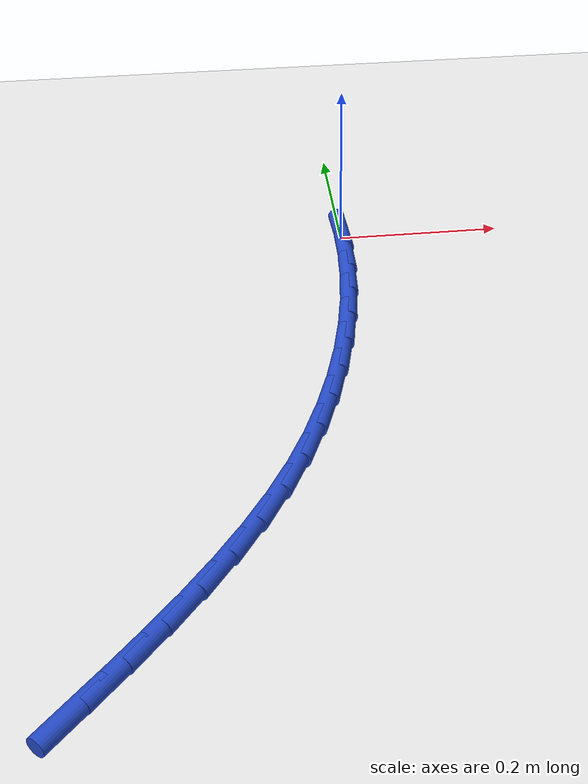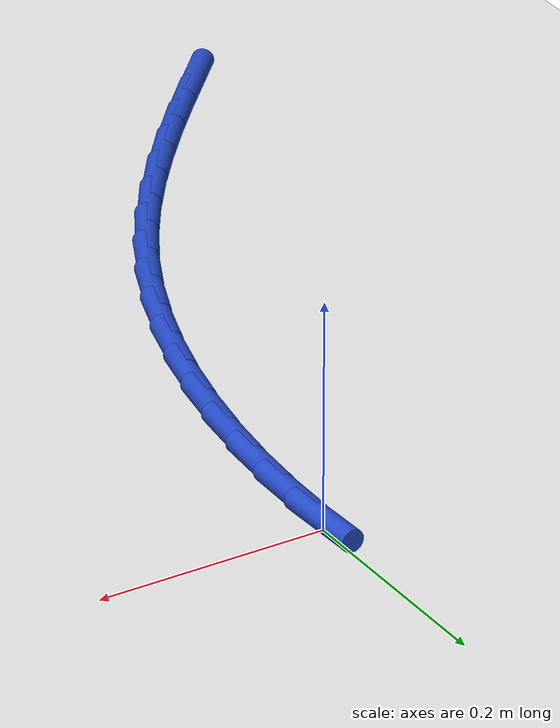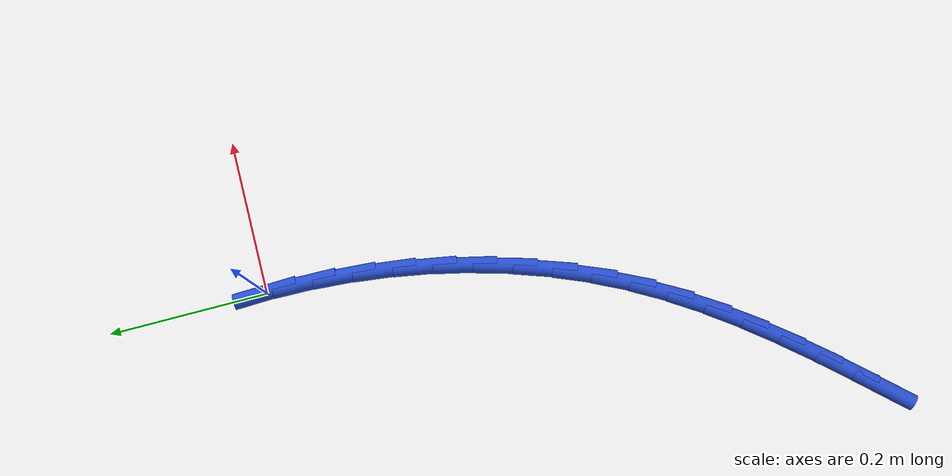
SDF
<sdf version="1.6">
 <world name="default">
  <model name="ground_plane">
   <static>1</static>
   <link name="link">
    <collision name="collision">
     <geometry><plane><normal>0 0 1</normal><size>100 100</size></plane></geometry>
     <surface><friction><ode><mu>100</mu><mu2>50</mu2></ode></friction></surface>
    </collision>
    <visual name="visual">
     <cast_shadows>0</cast_shadows>
     <geometry><plane><normal>0 0 1</normal><size>100 100</size></plane></geometry>
     <material>
      <script><uri>file://media/materials/scripts/gazebo.material</uri><name>Gazebo/WhiteGlow</name></script>
     </material>
    </visual>
   </link>
  </model>
  <model name="line">
   <link name="link_0">
    <pose>3.642919299551295e-17 9.71445146547012e-17 0.01 0 1.57 -1.5333083393462763</pose>
    <collision name="collision">
     <geometry><cylinder><radius>0.01</radius><length>0.08</length></cylinder></geometry>
    </collision>
    <visual name="visual">
     <material>
      <script><name>Gazebo/Blue</name><uri>file://media/materials/scripts/gazebo.material</uri></script>
     </material>
     <geometry><cylinder><radius>0.01</radius><length>0.08</length></cylinder></geometry>
    </visual>
   </link>
   <link name="link_124">
    <pose>-0.30599421895702766 -0.706148647266469 0.01 0 1.57 0.8298939743505049</pose>
    <collision name="collision">
     <geometry><cylinder><radius>0.01</radius><length>0.08</length></cylinder></geometry>
    </collision>
    <visual name="visual">
     <material>
      <script><name>Gazebo/Blue</name><uri>file://media/materials/scripts/gazebo.material</uri></script>
     </material>
     <geometry><cylinder><radius>0.01</radius><length>0.08</length></cylinder></geometry>
    </visual>
   </link>
   <link name="link_125">
    <pose>-0.2721430266166612 -0.6691425185604557 0.01 0 1.57 0.846698131527588</pose>
    <collision name="collision">
     <geometry><cylinder><radius>0.01</radius><length>0.08</length></cylinder></geometry>
    </collision>
    <visual name="visual">
     <material>
      <script><name>Gazebo/Blue</name><uri>file://media/materials/scripts/gazebo.material</uri></script>
     </material>
     <geometry><cylinder><radius>0.01</radius><length>0.08</length></cylinder></geometry>
    </visual>
   </link>
   <link name="link_126">
    <pose>-0.23922746787115376 -0.6319222420731724 0.01 0 1.57 0.8717692440145409</pose>
    <collision name="collision">
     <geometry><cylinder><radius>0.01</radius><length>0.08</length></cylinder></geometry>
    </collision>
    <visual name="visual">
     <material>
      <script><name>Gazebo/Blue</name><uri>file://media/materials/scripts/gazebo.material</uri></script>
     </material>
     <geometry><cylinder><radius>0.01</radius><length>0.08</length></cylinder></geometry>
    </visual>
   </link>
   <link name="link_127">
    <pose>-0.20753252862469113 -0.5942182963813545 0.01 0 1.57 0.9052611310556437</pose>
    <collision name="collision">
     <geometry><cylinder><radius>0.01</radius><length>0.08</length></cylinder></geometry>
    </collision>
    <visual name="visual">
     <material>
      <script><name>Gazebo/Blue</name><uri>file://media/materials/scripts/gazebo.material</uri></script>
     </material>
     <geometry><cylinder><radius>0.01</radius><length>0.08</length></cylinder></geometry>
    </visual>
   </link>
   <link name="link_128">
    <pose>-0.17734319478145744 -0.555761160061735 0.01 0 1.57 0.9472196221209314</pose>
    <collision name="collision">
     <geometry><cylinder><radius>0.01</radius><length>0.08</length></cylinder></geometry>
    </collision>
    <visual name="visual">
     <material>
      <script><name>Gazebo/Blue</name><uri>file://media/materials/scripts/gazebo.material</uri></script>
     </material>
     <geometry><cylinder><radius>0.01</radius><length>0.08</length></cylinder></geometry>
    </visual>
   </link>
   <link name="link_129">
    <pose>-0.14894445224563752 -0.5162813116910486 0.01 0 1.57 0.9975081950629913</pose>
    <collision name="collision">
     <geometry><cylinder><radius>0.01</radius><length>0.08</length></cylinder></geometry>
    </collision>
    <visual name="visual">
     <material>
      <script><name>Gazebo/Blue</name><uri>file://media/materials/scripts/gazebo.material</uri></script>
     </material>
     <geometry><cylinder><radius>0.01</radius><length>0.08</length></cylinder></geometry>
    </visual>
   </link>
   <link name="link_130">
    <pose>-0.12262128692141624 -0.47550922984602945 0.01 0 1.57 1.0557225519496796</pose>
    <collision name="collision">
     <geometry><cylinder><radius>0.01</radius><length>0.08</length></cylinder></geometry>
    </collision>
    <visual name="visual">
     <material>
      <script><name>Gazebo/Blue</name><uri>file://media/materials/scripts/gazebo.material</uri></script>
     </material>
     <geometry><cylinder><radius>0.01</radius><length>0.08</length></cylinder></geometry>
    </visual>
   </link>
   <link name="link_131">
    <pose>-0.09865868449484154 -0.43317539348005424 0.01 0 1.57 1.1193607351679762</pose>
    <collision name="collision">
     <geometry><cylinder><radius>0.01</radius><length>0.08</length></cylinder></geometry>
    </collision>
    <visual name="visual">
     <material>
      <script><name>Gazebo/Blue</name><uri>file://media/materials/scripts/gazebo.material</uri></script>
     </material>
     <geometry><cylinder><radius>0.01</radius><length>0.08</length></cylinder></geometry>
    </visual>
   </link>
   <link name="link_132">
    <pose>-0.0772897129298735 -0.3890999248297079 0.01 0 1.57 1.181302133993894</pose>
    <collision name="collision">
     <geometry><cylinder><radius>0.01</radius><length>0.08</length></cylinder></geometry>
    </collision>
    <visual name="visual">
     <material>
      <script><name>Gazebo/Blue</name><uri>file://media/materials/scripts/gazebo.material</uri></script>
     </material>
     <geometry><cylinder><radius>0.01</radius><length>0.08</length></cylinder></geometry>
    </visual>
   </link>
   <link name="link_133">
    <pose>-0.05854973684780811 -0.34344430888833555 0.01 0 1.57 1.240293900227767</pose>
    <collision name="collision">
     <geometry><cylinder><radius>0.01</radius><length>0.08</length></cylinder></geometry>
    </collision>
    <visual name="visual">
     <material>
      <script><name>Gazebo/Blue</name><uri>file://media/materials/scripts/gazebo.material</uri></script>
     </material>
     <geometry><cylinder><radius>0.01</radius><length>0.08</length></cylinder></geometry>
    </visual>
   </link>
   <link name="link_134">
    <pose>-0.04242706841775699 -0.2964512733565326 0.01 0 1.57 1.2967758176083912</pose>
    <collision name="collision">
     <geometry><cylinder><radius>0.01</radius><length>0.08</length></cylinder></geometry>
    </collision>
    <visual name="visual">
     <material>
      <script><name>Gazebo/Blue</name><uri>file://media/materials/scripts/gazebo.material</uri></script>
     </material>
     <geometry><cylinder><radius>0.01</radius><length>0.08</length></cylinder></geometry>
    </visual>
   </link>
   <link name="link_135">
    <pose>-0.028910019808831552 -0.24836354593489335 0.01 0 1.57 1.3512001409957335</pose>
    <collision name="collision">
     <geometry><cylinder><radius>0.01</radius><length>0.08</length></cylinder></geometry>
    </collision>
    <visual name="visual">
     <material>
      <script><name>Gazebo/Blue</name><uri>file://media/materials/scripts/gazebo.material</uri></script>
     </material>
     <geometry><cylinder><radius>0.01</radius><length>0.08</length></cylinder></geometry>
    </visual>
   </link>
   <link name="link_136">
    <pose>-0.01798690319014381 -0.19942385432401452 0.01 0 1.57 1.4040237937095734</pose>
    <collision name="collision">
     <geometry><cylinder><radius>0.01</radius><length>0.08</length></cylinder></geometry>
    </collision>
    <visual name="visual">
     <material>
      <script><name>Gazebo/Blue</name><uri>file://media/materials/scripts/gazebo.material</uri></script>
     </material>
     <geometry><cylinder><radius>0.01</radius><length>0.08</length></cylinder></geometry>
    </visual>
   </link>
   <link name="link_137">
    <pose>-0.00964603073080516 -0.14987492622449058 0.01 0 1.57 1.45570536041872</pose>
    <collision name="collision">
     <geometry><cylinder><radius>0.01</radius><length>0.08</length></cylinder></geometry>
    </collision>
    <visual name="visual">
     <material>
      <script><name>Gazebo/Blue</name><uri>file://media/materials/scripts/gazebo.material</uri></script>
     </material>
     <geometry><cylinder><radius>0.01</radius><length>0.08</length></cylinder></geometry>
    </visual>
   </link>
   <link name="link_138">
    <pose>-0.0038757145999272326 -0.09995948933691678 0.01 0 1.57 1.5067056110890695</pose>
    <collision name="collision">
     <geometry><cylinder><radius>0.01</radius><length>0.08</length></cylinder></geometry>
    </collision>
    <visual name="visual">
     <material>
      <script><name>Gazebo/Blue</name><uri>file://media/materials/scripts/gazebo.material</uri></script>
     </material>
     <geometry><cylinder><radius>0.01</radius><length>0.08</length></cylinder></geometry>
    </visual>
   </link>
   <link name="link_139">
    <pose>-0.000664266966621618 -0.04992027136188838 0.01 0 1.57 1.5574905544775985</pose>
    <collision name="collision">
     <geometry><cylinder><radius>0.01</radius><length>0.08</length></cylinder></geometry>
    </collision>
    <visual name="visual">
     <material>
      <script><name>Gazebo/Blue</name><uri>file://media/materials/scripts/gazebo.material</uri></script>
     </material>
     <geometry><cylinder><radius>0.01</radius><length>0.08</length></cylinder></geometry>
    </visual>
   </link>
  </model>
 </world>
</sdf>
